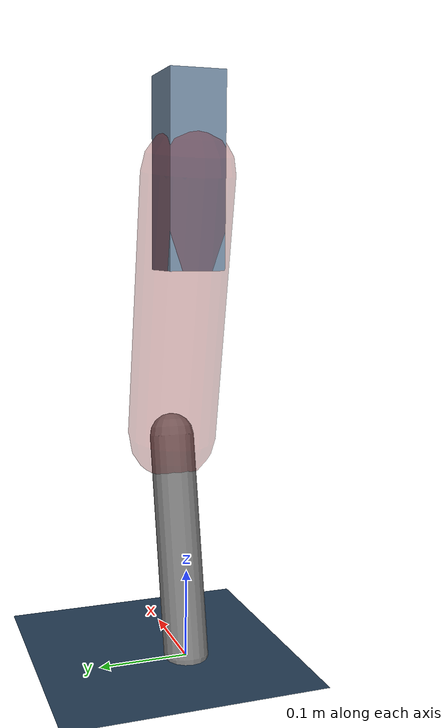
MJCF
<mujoco model="Hopper2D">
	<compiler inertiafromgeom="true" angle="radian" />
	<option timestep="0.001" integrator="implicit" cone="elliptic" solver="Newton" tolerance="1e-10" />

	<default>
		<geom contype="1" conaffinity="1" condim="3" friction="2 0.005 0.0001" solref="0.005 1" />
		<joint limited="true" damping="0.1" />
	</default>

	<asset>
		<texture name="skybox" type="skybox" builtin="gradient" rgb1=".4 .6 .8" rgb2="0 0 0" width="800" height="800" />
		<texture name="grid" type="2d" builtin="checker" rgb1=".1 .2 .3" rgb2=".2 .3 .4" width="300" height="300" mark="edge" markrgb=".2 .3 .4" />
		<material name="ground" texture="grid" texrepeat="1 1" texuniform="true" reflectance="0.1" />
		<material name="leg" rgba="0.5 0.6 0.7 1" />
	</asset>

	<worldbody>

		<geom name="floor" type="plane" size="5 5 0.25" material="ground" />

		<light directional="false" diffuse="0.8 0.8 0.8" specular="0.3 0.3 0.3" pos="0 0 2" dir="0 0 -1" />
		<light mode="targetbodycom" target="base" directional="false" diffuse="0.8 0.8 0.8" specular="0.3 0.3 0.3" pos="0 0 2" dir="0 0 -1" />

		<camera name="fixed" pos="0 -2 1" xyaxes="1 0 0 0 0 1" />
		<camera name="tracking" mode="trackcom" pos="0 -3 1" />

		<body name="root" pos="0 0 0.5326295058260384">
			<joint name="slide_x" type="slide" axis="1 0 0" range="-100 100" />
			<joint name="slide_z" type="slide" axis="0 0 1" range="0 10" />

			<body name="base" pos="0 0 0">
				<geom name="torso" type="box" size="0.03 0.03 0.1" mass="1.78" material="leg" />

				<body name="link1" pos="0 0 0" euler="0 1.3933161729876973 0">
					<joint type="hinge" axis="0 -1 0" pos="0 0 0" name="hinge1" limited="true" range="-3.14 3.14" stiffness="0" damping="0.1" />
					<geom name="thigh" type="capsule" fromto="0 0 0 0.29271960724302515 0 0" size="0.05" rgba="0.5 0 0 0.3" mass="0.9691429395561679" />

					<body name="link2" pos="0.29271960724302515 0 0" euler="0 0.38577608616625436 0">
						<joint type="hinge" axis="0 -1 0" pos="0 0 0" name="hinge2" limited="true" range="-3.14 3.14" stiffness="0" damping="0.1" />
						<geom name="shank" type="capsule" fromto="0 0 0 0.24990989858301332 0 0" size="0.025" mass="0.44242791886641064" />

					</body>
				</body>
			</body>
		</body>
	</worldbody>

	<actuator>
		<motor name="torque1" joint="hinge1" ctrlrange="-52.66755139002498 52.66755139002498" ctrllimited="true" gear="1" />
		<motor name="torque2" joint="hinge2" ctrlrange="-18.34040861974775 18.34040861974775" ctrllimited="true" gear="1" />
	</actuator>
</mujoco>
